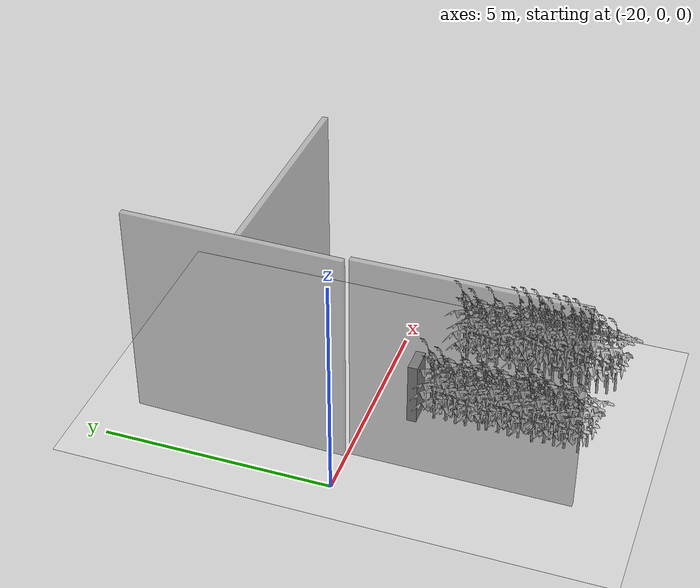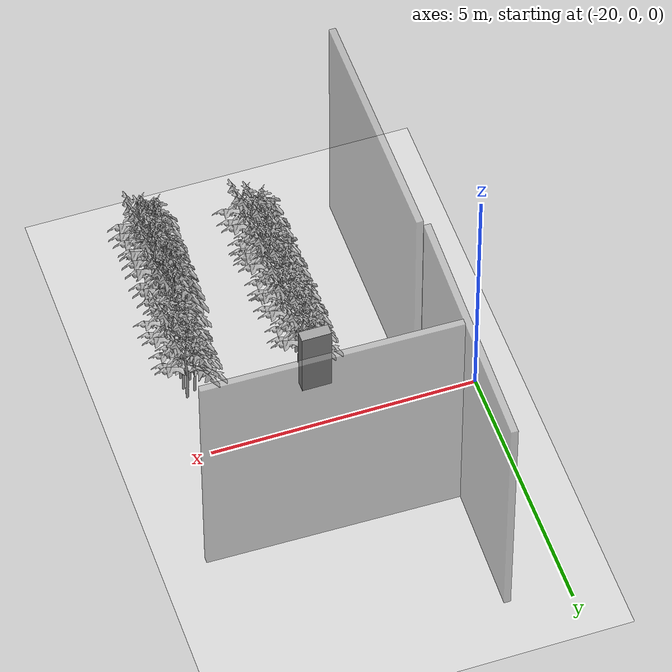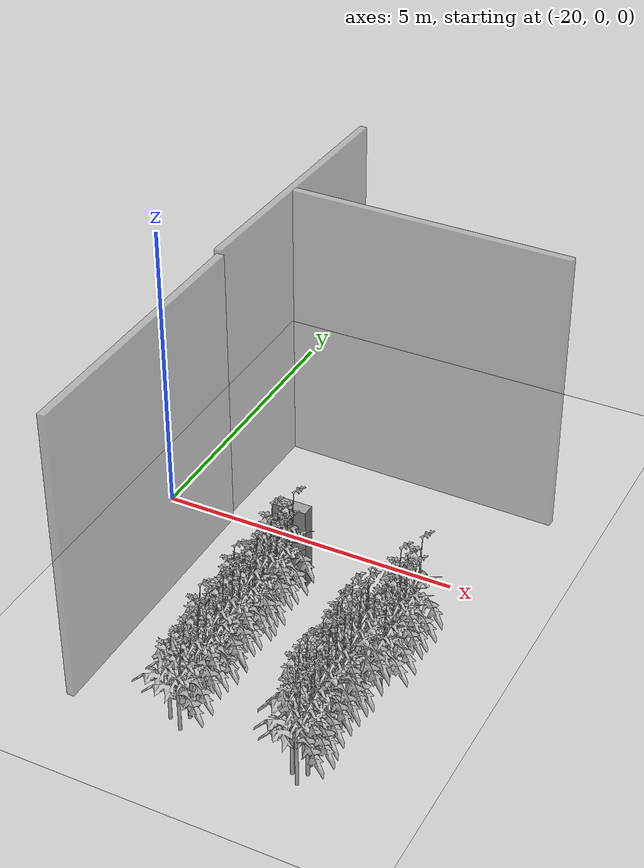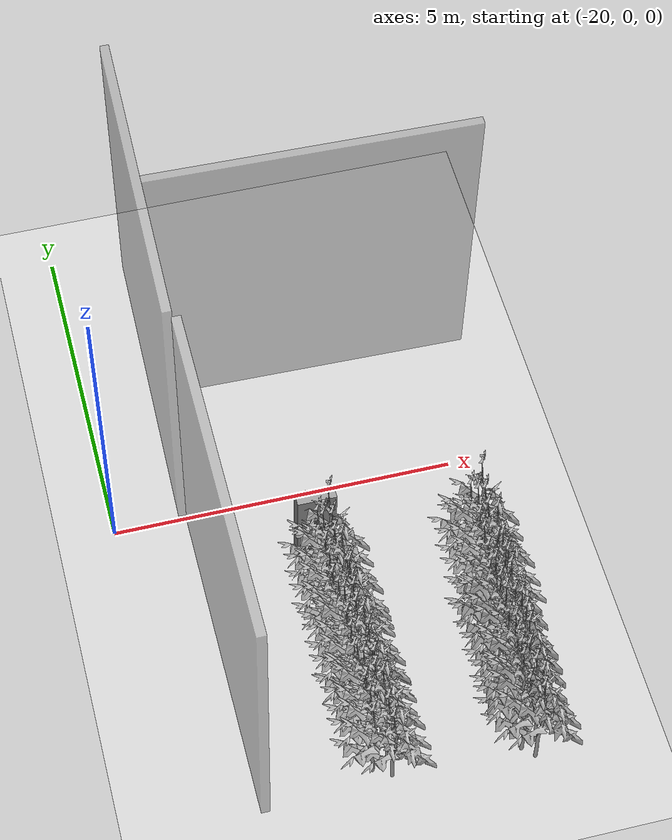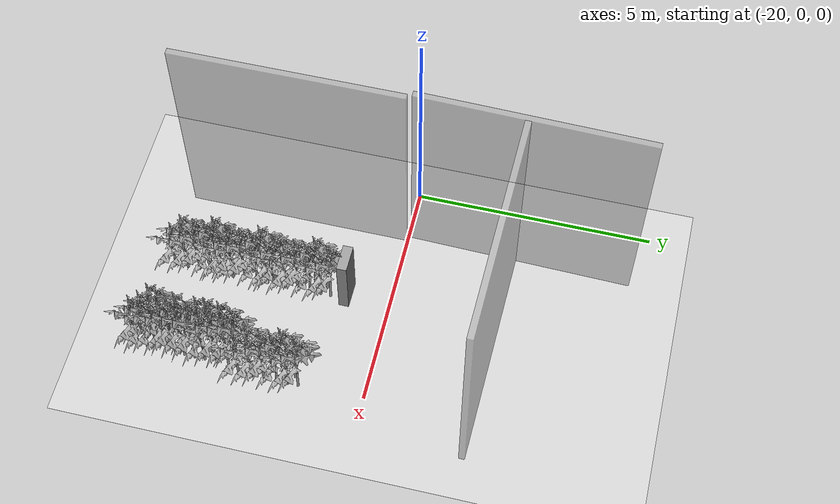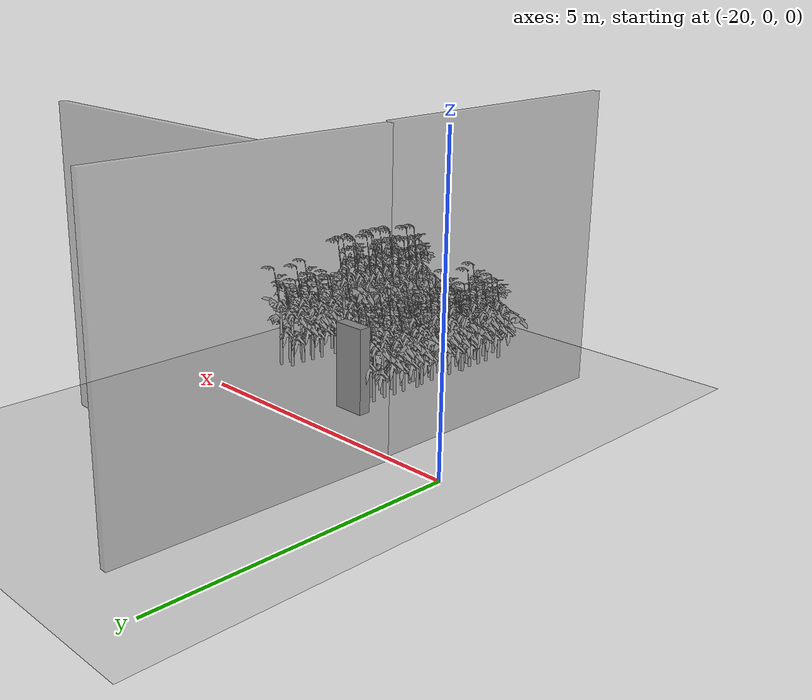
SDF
<sdf version="1.6">
 <world name="default">
  <model name="ground_plane">
   <static>1</static>
   <link name="link">
    <collision name="collision">
     <geometry><plane><normal>0 0 1</normal><size>100 100</size></plane></geometry>
     <surface>
      <contact><collide_bitmask>65535</collide_bitmask></contact>
      <friction><ode><mu>100</mu><mu2>50</mu2></ode></friction>
     </surface>
    </collision>
    <visual name="visual">
     <cast_shadows>0</cast_shadows>
     <geometry><plane><normal>0 0 1</normal><size>100 100</size></plane></geometry>
     <material>
      <script><uri>file://media/materials/scripts/gazebo.material</uri><name>Gazebo/Grey</name></script>
     </material>
    </visual>
   </link>
  </model>
  <model name="Front_Plant_1_8">
   <model name="tomato_plant_medium">
    <static>1</static>
    <link name="link">
     <collision name="collision">
      <pose>0 0 0 1.5708 -0 0</pose>
      <geometry><mesh><scale>0.5 0.5 0.5</scale><uri>model://stick/meshes/stick.dae</uri></mesh></geometry>
     </collision>
     <visual name="visual">
      <geometry>
       <mesh><scale>5e-06 5e-06 6e-06</scale><uri>model://tomato_plant_medium/meshes/tomato-plant.dae</uri></mesh>
      </geometry>
     </visual>
    </link>
    <pose>0.087453 -0.595994 0.012396 0 -0 0</pose>
   </model>
   <model name="tomato_plant_medium_0">
    <static>1</static>
    <link name="link">
     <collision name="collision">
      <pose>0 0 0 1.5708 -0 0</pose>
      <geometry><mesh><scale>0.5 0.5 0.5</scale><uri>model://stick/meshes/stick.dae</uri></mesh></geometry>
     </collision>
     <visual name="visual">
      <geometry>
       <mesh><scale>5e-06 5e-06 6e-06</scale><uri>model://tomato_plant_medium/meshes/tomato-plant.dae</uri></mesh>
      </geometry>
     </visual>
    </link>
    <pose>-0.086166 -0.251822 0.012396 0 -0 0</pose>
   </model>
   <model name="tomato_plant_medium_1">
    <static>1</static>
    <link name="link">
     <collision name="collision">
      <pose>0 0 0 1.5708 -0 0</pose>
      <geometry><mesh><scale>0.5 0.5 0.5</scale><uri>model://stick/meshes/stick.dae</uri></mesh></geometry>
     </collision>
     <visual name="visual">
      <geometry>
       <mesh><scale>5e-06 5e-06 6e-06</scale><uri>model://tomato_plant_medium/meshes/tomato-plant.dae</uri></mesh>
      </geometry>
     </visual>
    </link>
    <pose>0.080199 0.118127 0.012396 0 -0 0</pose>
   </model>
   <model name="tomato_plant_small">
    <static>1</static>
    <link name="link">
     <collision name="collision">
      <pose>0 0 0 1.5708 -0 0</pose>
      <geometry><mesh><scale>0.5 0.45 0.5</scale><uri>model://stick/meshes/stick.dae</uri></mesh></geometry>
     </collision>
     <visual name="visual">
      <geometry>
       <mesh><scale>5e-06 5e-06 5e-06</scale><uri>model://tomato_plant_small/meshes/tomato-plant.dae</uri></mesh>
      </geometry>
     </visual>
    </link>
    <pose>0.099683 -1.12011 0.012396 0 -0 0</pose>
   </model>
   <model name="tomato_plant_small_0">
    <static>1</static>
    <link name="link">
     <collision name="collision">
      <pose>0 0 0 1.5708 -0 0</pose>
      <geometry><mesh><scale>0.5 0.45 0.5</scale><uri>model://stick/meshes/stick.dae</uri></mesh></geometry>
     </collision>
     <visual name="visual">
      <geometry>
       <mesh><scale>5e-06 5e-06 5e-06</scale><uri>model://tomato_plant_small/meshes/tomato-plant.dae</uri></mesh>
      </geometry>
     </visual>
    </link>
    <pose>-0.138771 -0.983982 0.012396 0 -0 0</pose>
   </model>
   <model name="tomato_plant_small_1">
    <static>1</static>
    <link name="link">
     <collision name="collision">
      <pose>0 0 0 1.5708 -0 0</pose>
      <geometry><mesh><scale>0.5 0.45 0.5</scale><uri>model://stick/meshes/stick.dae</uri></mesh></geometry>
     </collision>
     <visual name="visual">
      <geometry>
       <mesh><scale>5e-06 5e-06 5e-06</scale><uri>model://tomato_plant_small/meshes/tomato-plant.dae</uri></mesh>
      </geometry>
     </visual>
    </link>
    <pose>0.101334 -0.848814 0.012396 0 -0 0</pose>
   </model>
   <model name="tomato_plant_small_2">
    <static>1</static>
    <link name="link">
     <collision name="collision">
      <pose>0 0 0 1.5708 -0 0</pose>
      <geometry><mesh><scale>0.5 0.45 0.5</scale><uri>model://stick/meshes/stick.dae</uri></mesh></geometry>
     </collision>
     <visual name="visual">
      <geometry>
       <mesh><scale>5e-06 5e-06 5e-06</scale><uri>model://tomato_plant_small/meshes/tomato-plant.dae</uri></mesh>
      </geometry>
     </visual>
    </link>
    <pose>-0.103369 -0.683189 0.012396 0 -0 0</pose>
   </model>
   <model name="tomato_plant_small_3">
    <static>1</static>
    <link name="link">
     <collision name="collision">
      <pose>0 0 0 1.5708 -0 0</pose>
      <geometry><mesh><scale>0.5 0.45 0.5</scale><uri>model://stick/meshes/stick.dae</uri></mesh></geometry>
     </collision>
     <visual name="visual">
      <geometry>
       <mesh><scale>5e-06 5e-06 5e-06</scale><uri>model://tomato_plant_small/meshes/tomato-plant.dae</uri></mesh>
      </geometry>
     </visual>
    </link>
    <pose>-0.104381 -0.464811 0.012396 0 -0 0</pose>
   </model>
   <model name="tomato_plant_small_4">
    <static>1</static>
    <link name="link">
     <collision name="collision">
      <pose>0 0 0 1.5708 -0 0</pose>
      <geometry><mesh><scale>0.5 0.45 0.5</scale><uri>model://stick/meshes/stick.dae</uri></mesh></geometry>
     </collision>
     <visual name="visual">
      <geometry>
       <mesh><scale>5e-06 5e-06 5e-06</scale><uri>model://tomato_plant_small/meshes/tomato-plant.dae</uri></mesh>
      </geometry>
     </visual>
    </link>
    <pose>0.055604 -0.336879 0.012396 0 -0 0</pose>
   </model>
   <model name="tomato_plant_small_5">
    <static>1</static>
    <link name="link">
     <collision name="collision">
      <pose>0 0 0 1.5708 -0 0</pose>
      <geometry><mesh><scale>0.5 0.45 0.5</scale><uri>model://stick/meshes/stick.dae</uri></mesh></geometry>
     </collision>
     <visual name="visual">
      <geometry>
       <mesh><scale>5e-06 5e-06 5e-06</scale><uri>model://tomato_plant_small/meshes/tomato-plant.dae</uri></mesh>
      </geometry>
     </visual>
    </link>
    <pose>0.085059 -0.092572 0.012396 0 -0 0</pose>
   </model>
   <model name="tomato_plant_small_6">
    <static>1</static>
    <link name="link">
     <collision name="collision">
      <pose>0 0 0 1.5708 -0 0</pose>
      <geometry><mesh><scale>0.5 0.45 0.5</scale><uri>model://stick/meshes/stick.dae</uri></mesh></geometry>
     </collision>
     <visual name="visual">
      <geometry>
       <mesh><scale>5e-06 5e-06 5e-06</scale><uri>model://tomato_plant_small/meshes/tomato-plant.dae</uri></mesh>
      </geometry>
     </visual>
    </link>
    <pose>-0.096345 0.008888 0.012396 0 -0 0</pose>
   </model>
   <static>0</static>
   <pose>-17.2096 -3.50699 0 0 -0 0</pose>
  </model>
  <model name="Front_Plant_1_9">
   <model name="tomato_plant_medium">
    <static>1</static>
    <link name="link">
     <collision name="collision">
      <pose>0 0 0 1.5708 -0 0</pose>
      <geometry><mesh><scale>0.5 0.5 0.5</scale><uri>model://stick/meshes/stick.dae</uri></mesh></geometry>
     </collision>
     <visual name="visual">
      <geometry>
       <mesh><scale>5e-06 5e-06 6e-06</scale><uri>model://tomato_plant_medium/meshes/tomato-plant.dae</uri></mesh>
      </geometry>
     </visual>
    </link>
    <pose>0.087453 -0.595994 0.012396 0 -0 0</pose>
   </model>
   <model name="tomato_plant_medium_0">
    <static>1</static>
    <link name="link">
     <collision name="collision">
      <pose>0 0 0 1.5708 -0 0</pose>
      <geometry><mesh><scale>0.5 0.5 0.5</scale><uri>model://stick/meshes/stick.dae</uri></mesh></geometry>
     </collision>
     <visual name="visual">
      <geometry>
       <mesh><scale>5e-06 5e-06 6e-06</scale><uri>model://tomato_plant_medium/meshes/tomato-plant.dae</uri></mesh>
      </geometry>
     </visual>
    </link>
    <pose>-0.086166 -0.251822 0.012396 0 -0 0</pose>
   </model>
   <model name="tomato_plant_medium_1">
    <static>1</static>
    <link name="link">
     <collision name="collision">
      <pose>0 0 0 1.5708 -0 0</pose>
      <geometry><mesh><scale>0.5 0.5 0.5</scale><uri>model://stick/meshes/stick.dae</uri></mesh></geometry>
     </collision>
     <visual name="visual">
      <geometry>
       <mesh><scale>5e-06 5e-06 6e-06</scale><uri>model://tomato_plant_medium/meshes/tomato-plant.dae</uri></mesh>
      </geometry>
     </visual>
    </link>
    <pose>0.080199 0.118127 0.012396 0 -0 0</pose>
   </model>
   <model name="tomato_plant_small">
    <static>1</static>
    <link name="link">
     <collision name="collision">
      <pose>0 0 0 1.5708 -0 0</pose>
      <geometry><mesh><scale>0.5 0.45 0.5</scale><uri>model://stick/meshes/stick.dae</uri></mesh></geometry>
     </collision>
     <visual name="visual">
      <geometry>
       <mesh><scale>5e-06 5e-06 5e-06</scale><uri>model://tomato_plant_small/meshes/tomato-plant.dae</uri></mesh>
      </geometry>
     </visual>
    </link>
    <pose>0.099683 -1.12011 0.012396 0 -0 0</pose>
   </model>
   <model name="tomato_plant_small_0">
    <static>1</static>
    <link name="link">
     <collision name="collision">
      <pose>0 0 0 1.5708 -0 0</pose>
      <geometry><mesh><scale>0.5 0.45 0.5</scale><uri>model://stick/meshes/stick.dae</uri></mesh></geometry>
     </collision>
     <visual name="visual">
      <geometry>
       <mesh><scale>5e-06 5e-06 5e-06</scale><uri>model://tomato_plant_small/meshes/tomato-plant.dae</uri></mesh>
      </geometry>
     </visual>
    </link>
    <pose>-0.138771 -0.983982 0.012396 0 -0 0</pose>
   </model>
   <model name="tomato_plant_small_1">
    <static>1</static>
    <link name="link">
     <collision name="collision">
      <pose>0 0 0 1.5708 -0 0</pose>
      <geometry><mesh><scale>0.5 0.45 0.5</scale><uri>model://stick/meshes/stick.dae</uri></mesh></geometry>
     </collision>
     <visual name="visual">
      <geometry>
       <mesh><scale>5e-06 5e-06 5e-06</scale><uri>model://tomato_plant_small/meshes/tomato-plant.dae</uri></mesh>
      </geometry>
     </visual>
    </link>
    <pose>0.101334 -0.848814 0.012396 0 -0 0</pose>
   </model>
   <model name="tomato_plant_small_2">
    <static>1</static>
    <link name="link">
     <collision name="collision">
      <pose>0 0 0 1.5708 -0 0</pose>
      <geometry><mesh><scale>0.5 0.45 0.5</scale><uri>model://stick/meshes/stick.dae</uri></mesh></geometry>
     </collision>
     <visual name="visual">
      <geometry>
       <mesh><scale>5e-06 5e-06 5e-06</scale><uri>model://tomato_plant_small/meshes/tomato-plant.dae</uri></mesh>
      </geometry>
     </visual>
    </link>
    <pose>-0.103369 -0.683189 0.012396 0 -0 0</pose>
   </model>
   <model name="tomato_plant_small_3">
    <static>1</static>
    <link name="link">
     <collision name="collision">
      <pose>0 0 0 1.5708 -0 0</pose>
      <geometry><mesh><scale>0.5 0.45 0.5</scale><uri>model://stick/meshes/stick.dae</uri></mesh></geometry>
     </collision>
     <visual name="visual">
      <geometry>
       <mesh><scale>5e-06 5e-06 5e-06</scale><uri>model://tomato_plant_small/meshes/tomato-plant.dae</uri></mesh>
      </geometry>
     </visual>
    </link>
    <pose>-0.104381 -0.464811 0.012396 0 -0 0</pose>
   </model>
   <model name="tomato_plant_small_4">
    <static>1</static>
    <link name="link">
     <collision name="collision">
      <pose>0 0 0 1.5708 -0 0</pose>
      <geometry><mesh><scale>0.5 0.45 0.5</scale><uri>model://stick/meshes/stick.dae</uri></mesh></geometry>
     </collision>
     <visual name="visual">
      <geometry>
       <mesh><scale>5e-06 5e-06 5e-06</scale><uri>model://tomato_plant_small/meshes/tomato-plant.dae</uri></mesh>
      </geometry>
     </visual>
    </link>
    <pose>0.055604 -0.336879 0.012396 0 -0 0</pose>
   </model>
   <model name="tomato_plant_small_5">
    <static>1</static>
    <link name="link">
     <collision name="collision">
      <pose>0 0 0 1.5708 -0 0</pose>
      <geometry><mesh><scale>0.5 0.45 0.5</scale><uri>model://stick/meshes/stick.dae</uri></mesh></geometry>
     </collision>
     <visual name="visual">
      <geometry>
       <mesh><scale>5e-06 5e-06 5e-06</scale><uri>model://tomato_plant_small/meshes/tomato-plant.dae</uri></mesh>
      </geometry>
     </visual>
    </link>
    <pose>0.085059 -0.092572 0.012396 0 -0 0</pose>
   </model>
   <model name="tomato_plant_small_6">
    <static>1</static>
    <link name="link">
     <collision name="collision">
      <pose>0 0 0 1.5708 -0 0</pose>
      <geometry><mesh><scale>0.5 0.45 0.5</scale><uri>model://stick/meshes/stick.dae</uri></mesh></geometry>
     </collision>
     <visual name="visual">
      <geometry>
       <mesh><scale>5e-06 5e-06 5e-06</scale><uri>model://tomato_plant_small/meshes/tomato-plant.dae</uri></mesh>
      </geometry>
     </visual>
    </link>
    <pose>-0.096345 0.008888 0.012396 0 -0 0</pose>
   </model>
   <static>0</static>
   <pose>-17.2096 -2.52385 0 0 -0 0</pose>
  </model>
  <model name="Front_Plant_1_10">
   <model name="tomato_plant_medium">
    <static>1</static>
    <link name="link">
     <collision name="collision">
      <pose>0 0 0 1.5708 -0 0</pose>
      <geometry><mesh><scale>0.5 0.5 0.5</scale><uri>model://stick/meshes/stick.dae</uri></mesh></geometry>
     </collision>
     <visual name="visual">
      <geometry>
       <mesh><scale>5e-06 5e-06 6e-06</scale><uri>model://tomato_plant_medium/meshes/tomato-plant.dae</uri></mesh>
      </geometry>
     </visual>
    </link>
    <pose>0.087453 -0.595994 0.012396 0 -0 0</pose>
   </model>
   <model name="tomato_plant_medium_0">
    <static>1</static>
    <link name="link">
     <collision name="collision">
      <pose>0 0 0 1.5708 -0 0</pose>
      <geometry><mesh><scale>0.5 0.5 0.5</scale><uri>model://stick/meshes/stick.dae</uri></mesh></geometry>
     </collision>
     <visual name="visual">
      <geometry>
       <mesh><scale>5e-06 5e-06 6e-06</scale><uri>model://tomato_plant_medium/meshes/tomato-plant.dae</uri></mesh>
      </geometry>
     </visual>
    </link>
    <pose>-0.086166 -0.251822 0.012396 0 -0 0</pose>
   </model>
   <model name="tomato_plant_medium_1">
    <static>1</static>
    <link name="link">
     <collision name="collision">
      <pose>0 0 0 1.5708 -0 0</pose>
      <geometry><mesh><scale>0.5 0.5 0.5</scale><uri>model://stick/meshes/stick.dae</uri></mesh></geometry>
     </collision>
     <visual name="visual">
      <geometry>
       <mesh><scale>5e-06 5e-06 6e-06</scale><uri>model://tomato_plant_medium/meshes/tomato-plant.dae</uri></mesh>
      </geometry>
     </visual>
    </link>
    <pose>0.080199 0.118127 0.012396 0 -0 0</pose>
   </model>
   <model name="tomato_plant_small">
    <static>1</static>
    <link name="link">
     <collision name="collision">
      <pose>0 0 0 1.5708 -0 0</pose>
      <geometry><mesh><scale>0.5 0.45 0.5</scale><uri>model://stick/meshes/stick.dae</uri></mesh></geometry>
     </collision>
     <visual name="visual">
      <geometry>
       <mesh><scale>5e-06 5e-06 5e-06</scale><uri>model://tomato_plant_small/meshes/tomato-plant.dae</uri></mesh>
      </geometry>
     </visual>
    </link>
    <pose>0.099683 -1.12011 0.012396 0 -0 0</pose>
   </model>
   <model name="tomato_plant_small_0">
    <static>1</static>
    <link name="link">
     <collision name="collision">
      <pose>0 0 0 1.5708 -0 0</pose>
      <geometry><mesh><scale>0.5 0.45 0.5</scale><uri>model://stick/meshes/stick.dae</uri></mesh></geometry>
     </collision>
     <visual name="visual">
      <geometry>
       <mesh><scale>5e-06 5e-06 5e-06</scale><uri>model://tomato_plant_small/meshes/tomato-plant.dae</uri></mesh>
      </geometry>
     </visual>
    </link>
    <pose>-0.138771 -0.983982 0.012396 0 -0 0</pose>
   </model>
   <model name="tomato_plant_small_1">
    <static>1</static>
    <link name="link">
     <collision name="collision">
      <pose>0 0 0 1.5708 -0 0</pose>
      <geometry><mesh><scale>0.5 0.45 0.5</scale><uri>model://stick/meshes/stick.dae</uri></mesh></geometry>
     </collision>
     <visual name="visual">
      <geometry>
       <mesh><scale>5e-06 5e-06 5e-06</scale><uri>model://tomato_plant_small/meshes/tomato-plant.dae</uri></mesh>
      </geometry>
     </visual>
    </link>
    <pose>0.101334 -0.848814 0.012396 0 -0 0</pose>
   </model>
   <model name="tomato_plant_small_2">
    <static>1</static>
    <link name="link">
     <collision name="collision">
      <pose>0 0 0 1.5708 -0 0</pose>
      <geometry><mesh><scale>0.5 0.45 0.5</scale><uri>model://stick/meshes/stick.dae</uri></mesh></geometry>
     </collision>
     <visual name="visual">
      <geometry>
       <mesh><scale>5e-06 5e-06 5e-06</scale><uri>model://tomato_plant_small/meshes/tomato-plant.dae</uri></mesh>
      </geometry>
     </visual>
    </link>
    <pose>-0.103369 -0.683189 0.012396 0 -0 0</pose>
   </model>
   <model name="tomato_plant_small_3">
    <static>1</static>
    <link name="link">
     <collision name="collision">
      <pose>0 0 0 1.5708 -0 0</pose>
      <geometry><mesh><scale>0.5 0.45 0.5</scale><uri>model://stick/meshes/stick.dae</uri></mesh></geometry>
     </collision>
     <visual name="visual">
      <geometry>
       <mesh><scale>5e-06 5e-06 5e-06</scale><uri>model://tomato_plant_small/meshes/tomato-plant.dae</uri></mesh>
      </geometry>
     </visual>
    </link>
    <pose>-0.104381 -0.464811 0.012396 0 -0 0</pose>
   </model>
   <model name="tomato_plant_small_4">
    <static>1</static>
    <link name="link">
     <collision name="collision">
      <pose>0 0 0 1.5708 -0 0</pose>
      <geometry><mesh><scale>0.5 0.45 0.5</scale><uri>model://stick/meshes/stick.dae</uri></mesh></geometry>
     </collision>
     <visual name="visual">
      <geometry>
       <mesh><scale>5e-06 5e-06 5e-06</scale><uri>model://tomato_plant_small/meshes/tomato-plant.dae</uri></mesh>
      </geometry>
     </visual>
    </link>
    <pose>0.055604 -0.336879 0.012396 0 -0 0</pose>
   </model>
   <model name="tomato_plant_small_5">
    <static>1</static>
    <link name="link">
     <collision name="collision">
      <pose>0 0 0 1.5708 -0 0</pose>
      <geometry><mesh><scale>0.5 0.45 0.5</scale><uri>model://stick/meshes/stick.dae</uri></mesh></geometry>
     </collision>
     <visual name="visual">
      <geometry>
       <mesh><scale>5e-06 5e-06 5e-06</scale><uri>model://tomato_plant_small/meshes/tomato-plant.dae</uri></mesh>
      </geometry>
     </visual>
    </link>
    <pose>0.085059 -0.092572 0.012396 0 -0 0</pose>
   </model>
   <model name="tomato_plant_small_6">
    <static>1</static>
    <link name="link">
     <collision name="collision">
      <pose>0 0 0 1.5708 -0 0</pose>
      <geometry><mesh><scale>0.5 0.45 0.5</scale><uri>model://stick/meshes/stick.dae</uri></mesh></geometry>
     </collision>
     <visual name="visual">
      <geometry>
       <mesh><scale>5e-06 5e-06 5e-06</scale><uri>model://tomato_plant_small/meshes/tomato-plant.dae</uri></mesh>
      </geometry>
     </visual>
    </link>
    <pose>-0.096345 0.008888 0.012396 0 -0 0</pose>
   </model>
   <static>0</static>
   <pose>-17.2096 -1.37891 0 0 -0 0</pose>
  </model>
  <model name="MIddle_Plant_1_1">
   <model name="tomato_plant_big">
    <static>1</static>
    <link name="link">
     <collision name="collision">
      <pose>0 0 0 1.5708 -0 0</pose>
      <geometry><mesh><scale>0.5 0.6 0.5</scale><uri>model://stick/meshes/stick.dae</uri></mesh></geometry>
     </collision>
     <visual name="visual">
      <geometry>
       <mesh><scale>5e-06 5e-06 7e-06</scale><uri>model://tomato_plant_big/meshes/tomato-plant.dae</uri></mesh>
      </geometry>
     </visual>
    </link>
    <pose>-0.144318 -0.693607 -0 0 -0 0</pose>
   </model>
   <model name="tomato_plant_big_0">
    <static>1</static>
    <link name="link">
     <collision name="collision">
      <pose>0 0 0 1.5708 -0 0</pose>
      <geometry><mesh><scale>0.5 0.6 0.5</scale><uri>model://stick/meshes/stick.dae</uri></mesh></geometry>
     </collision>
     <visual name="visual">
      <geometry>
       <mesh><scale>5e-06 5e-06 7e-06</scale><uri>model://tomato_plant_big/meshes/tomato-plant.dae</uri></mesh>
      </geometry>
     </visual>
    </link>
    <pose>-0.11784 -0.519827 0 0 -0 0</pose>
   </model>
   <model name="tomato_plant_big_1">
    <static>1</static>
    <link name="link">
     <collision name="collision">
      <pose>0 0 0 1.5708 -0 0</pose>
      <geometry><mesh><scale>0.5 0.6 0.5</scale><uri>model://stick/meshes/stick.dae</uri></mesh></geometry>
     </collision>
     <visual name="visual">
      <geometry>
       <mesh><scale>5e-06 5e-06 7e-06</scale><uri>model://tomato_plant_big/meshes/tomato-plant.dae</uri></mesh>
      </geometry>
     </visual>
    </link>
    <pose>0.073755 -0.247584 0 0 -0 0</pose>
   </model>
   <model name="tomato_plant_big_10">
    <static>1</static>
    <link name="link">
     <collision name="collision">
      <pose>0 0 0 1.5708 -0 0</pose>
      <geometry><mesh><scale>0.5 0.6 0.5</scale><uri>model://stick/meshes/stick.dae</uri></mesh></geometry>
     </collision>
     <visual name="visual">
      <geometry>
       <mesh><scale>5e-06 5e-06 7e-06</scale><uri>model://tomato_plant_big/meshes/tomato-plant.dae</uri></mesh>
      </geometry>
     </visual>
    </link>
    <pose>0.037052 1.07094 0 0 -0 0</pose>
   </model>
   <model name="tomato_plant_big_2">
    <static>1</static>
    <link name="link">
     <collision name="collision">
      <pose>0 0 0 1.5708 -0 0</pose>
      <geometry><mesh><scale>0.5 0.6 0.5</scale><uri>model://stick/meshes/stick.dae</uri></mesh></geometry>
     </collision>
     <visual name="visual">
      <geometry>
       <mesh><scale>5e-06 5e-06 7e-06</scale><uri>model://tomato_plant_big/meshes/tomato-plant.dae</uri></mesh>
      </geometry>
     </visual>
    </link>
    <pose>-0.076926 -0.131165 0 0 -0 0</pose>
   </model>
   <model name="tomato_plant_big_3">
    <static>1</static>
    <link name="link">
     <collision name="collision">
      <pose>0 0 0 1.5708 -0 0</pose>
      <geometry><mesh><scale>0.5 0.6 0.5</scale><uri>model://stick/meshes/stick.dae</uri></mesh></geometry>
     </collision>
     <visual name="visual">
      <geometry>
       <mesh><scale>5e-06 5e-06 7e-06</scale><uri>model://tomato_plant_big/meshes/tomato-plant.dae</uri></mesh>
      </geometry>
     </visual>
    </link>
    <pose>0.093714 -0.038386 0 0 -0 0</pose>
   </model>
   <model name="tomato_plant_big_4">
    <static>1</static>
    <link name="link">
     <collision name="collision">
      <pose>0 0 0 1.5708 -0 0</pose>
      <geometry><mesh><scale>0.5 0.6 0.5</scale><uri>model://stick/meshes/stick.dae</uri></mesh></geometry>
     </collision>
     <visual name="visual">
      <geometry>
       <mesh><scale>5e-06 5e-06 7e-06</scale><uri>model://tomato_plant_big/meshes/tomato-plant.dae</uri></mesh>
      </geometry>
     </visual>
    </link>
    <pose>0.103117 0.184356 0 0 -0 0</pose>
   </model>
   <model name="tomato_plant_big_5">
    <static>1</static>
    <link name="link">
     <collision name="collision">
      <pose>0 0 0 1.5708 -0 0</pose>
      <geometry><mesh><scale>0.5 0.6 0.5</scale><uri>model://stick/meshes/stick.dae</uri></mesh></geometry>
     </collision>
     <visual name="visual">
      <geometry>
       <mesh><scale>5e-06 5e-06 7e-06</scale><uri>model://tomato_plant_big/meshes/tomato-plant.dae</uri></mesh>
      </geometry>
     </visual>
    </link>
    <pose>-0.074883 0.301479 0 0 -0 0</pose>
   </model>
   <model name="tomato_plant_big_6">
    <static>1</static>
    <link name="link">
     <collision name="collision">
      <pose>0 0 0 1.5708 -0 0</pose>
      <geometry><mesh><scale>0.5 0.6 0.5</scale><uri>model://stick/meshes/stick.dae</uri></mesh></geometry>
     </collision>
     <visual name="visual">
      <geometry>
       <mesh><scale>5e-06 5e-06 7e-06</scale><uri>model://tomato_plant_big/meshes/tomato-plant.dae</uri></mesh>
      </geometry>
     </visual>
    </link>
    <pose>-0.096921 0.484007 0 0 -0 0</pose>
   </model>
   <model name="tomato_plant_big_7">
    <static>1</static>
    <link name="link">
     <collision name="collision">
      <pose>0 0 0 1.5708 -0 0</pose>
      <geometry><mesh><scale>0.5 0.6 0.5</scale><uri>model://stick/meshes/stick.dae</uri></mesh></geometry>
     </collision>
     <visual name="visual">
      <geometry>
       <mesh><scale>5e-06 5e-06 7e-06</scale><uri>model://tomato_plant_big/meshes/tomato-plant.dae</uri></mesh>
      </geometry>
     </visual>
    </link>
    <pose>0.107491 0.653976 0 0 -0 0</pose>
   </model>
   <model name="tomato_plant_big_8">
    <static>1</static>
    <link name="link">
     <collision name="collision">
      <pose>0 0 0 1.5708 -0 0</pose>
      <geometry><mesh><scale>0.5 0.6 0.5</scale><uri>model://stick/meshes/stick.dae</uri></mesh></geometry>
     </collision>
     <visual name="visual">
      <geometry>
       <mesh><scale>5e-06 5e-06 7e-06</scale><uri>model://tomato_plant_big/meshes/tomato-plant.dae</uri></mesh>
      </geometry>
     </visual>
    </link>
    <pose>-0.07985 0.768549 0 0 -0 0</pose>
   </model>
   <model name="tomato_plant_big_9">
    <static>1</static>
    <link name="link">
     <collision name="collision">
      <pose>0 0 0 1.5708 -0 0</pose>
      <geometry><mesh><scale>0.5 0.6 0.5</scale><uri>model://stick/meshes/stick.dae</uri></mesh></geometry>
     </collision>
     <visual name="visual">
      <geometry>
       <mesh><scale>5e-06 5e-06 7e-06</scale><uri>model://tomato_plant_big/meshes/tomato-plant.dae</uri></mesh>
      </geometry>
     </visual>
    </link>
    <pose>0.098361 0.890852 0 0 -0 0</pose>
   </model>
   <model name="tomato_plant_medium">
    <static>1</static>
    <link name="link">
     <collision name="collision">
      <pose>0 0 0 1.5708 -0 0</pose>
      <geometry><mesh><scale>0.5 0.5 0.5</scale><uri>model://stick/meshes/stick.dae</uri></mesh></geometry>
     </collision>
     <visual name="visual">
      <geometry>
       <mesh><scale>5e-06 5e-06 6e-06</scale><uri>model://tomato_plant_medium/meshes/tomato-plant.dae</uri></mesh>
      </geometry>
     </visual>
    </link>
    <pose>0.056913 -1.05328 0 0 -0 0</pose>
   </model>
   <model name="tomato_plant_medium_0">
    <static>1</static>
    <link name="link">
     <collision name="collision">
      <pose>0 0 0 1.5708 -0 0</pose>
      <geometry><mesh><scale>0.5 0.5 0.5</scale><uri>model://stick/meshes/stick.dae</uri></mesh></geometry>
     </collision>
     <visual name="visual">
      <geometry>
       <mesh><scale>5e-06 5e-06 6e-06</scale><uri>model://tomato_plant_medium/meshes/tomato-plant.dae</uri></mesh>
      </geometry>
     </visual>
    </link>
    <pose>-0.092719 -0.905729 0 0 -0 0</pose>
   </model>
   <model name="tomato_plant_medium_1">
    <static>1</static>
    <link name="link">
     <collision name="collision">
      <pose>0 0 0 1.5708 -0 0</pose>
      <geometry><mesh><scale>0.5 0.5 0.5</scale><uri>model://stick/meshes/stick.dae</uri></mesh></geometry>
     </collision>
     <visual name="visual">
      <geometry>
       <mesh><scale>5e-06 5e-06 6e-06</scale><uri>model://tomato_plant_medium/meshes/tomato-plant.dae</uri></mesh>
      </geometry>
     </visual>
    </link>
    <pose>0.108962 -0.829637 0 0 -0 0</pose>
   </model>
   <model name="tomato_plant_medium_2">
    <static>1</static>
    <link name="link">
     <collision name="collision">
      <pose>0 0 0 1.5708 -0 0</pose>
      <geometry><mesh><scale>0.5 0.5 0.5</scale><uri>model://stick/meshes/stick.dae</uri></mesh></geometry>
     </collision>
     <visual name="visual">
      <geometry>
       <mesh><scale>5e-06 5e-06 6e-06</scale><uri>model://tomato_plant_medium/meshes/tomato-plant.dae</uri></mesh>
      </geometry>
     </visual>
    </link>
    <pose>0.071216 -0.652507 0 0 -0 0</pose>
   </model>
   <model name="tomato_plant_medium_3">
    <static>1</static>
    <link name="link">
     <collision name="collision">
      <pose>0 0 0 1.5708 -0 0</pose>
      <geometry><mesh><scale>0.5 0.5 0.5</scale><uri>model://stick/meshes/stick.dae</uri></mesh></geometry>
     </collision>
     <visual name="visual">
      <geometry>
       <mesh><scale>5e-06 5e-06 6e-06</scale><uri>model://tomato_plant_medium/meshes/tomato-plant.dae</uri></mesh>
      </geometry>
     </visual>
    </link>
    <pose>0.047335 -0.423046 0 0 -0 0</pose>
   </model>
   <model name="tomato_plant_medium_4">
    <static>1</static>
    <link name="link">
     <collision name="collision">
      <pose>0 0 0 1.5708 -0 0</pose>
      <geometry><mesh><scale>0.5 0.5 0.5</scale><uri>model://stick/meshes/stick.dae</uri></mesh></geometry>
     </collision>
     <visual name="visual">
      <geometry>
       <mesh><scale>5e-06 5e-06 6e-06</scale><uri>model://tomato_plant_medium/meshes/tomato-plant.dae</uri></mesh>
      </geometry>
     </visual>
    </link>
    <pose>-0.081012 -0.320324 0 0 -0 0</pose>
   </model>
   <model name="tomato_plant_medium_5">
    <static>1</static>
    <link name="link">
     <collision name="collision">
      <pose>0 0 0 1.5708 -0 0</pose>
      <geometry><mesh><scale>0.5 0.5 0.5</scale><uri>model://stick/meshes/stick.dae</uri></mesh></geometry>
     </collision>
     <visual name="visual">
      <geometry>
       <mesh><scale>5e-06 5e-06 6e-06</scale><uri>model://tomato_plant_medium/meshes/tomato-plant.dae</uri></mesh>
      </geometry>
     </visual>
    </link>
    <pose>-0.07452 0.095988 0 0 -0 0</pose>
   </model>
   <model name="tomato_plant_medium_6">
    <static>1</static>
    <link name="link">
     <collision name="collision">
      <pose>0 0 0 1.5708 -0 0</pose>
      <geometry><mesh><scale>0.5 0.5 0.5</scale><uri>model://stick/meshes/stick.dae</uri></mesh></geometry>
     </collision>
     <visual name="visual">
      <geometry>
       <mesh><scale>5e-06 5e-06 6e-06</scale><uri>model://tomato_plant_medium/meshes/tomato-plant.dae</uri></mesh>
      </geometry>
     </visual>
    </link>
    <pose>0.101424 0.395443 0 0 -0 0</pose>
   </model>
   <model name="tomato_plant_small">
    <static>1</static>
    <link name="link">
     <collision name="collision">
      <pose>0 0 0 1.5708 -0 0</pose>
      <geometry><mesh><scale>0.5 0.45 0.5</scale><uri>model://stick/meshes/stick.dae</uri></mesh></geometry>
     </collision>
     <visual name="visual">
      <geometry>
       <mesh><scale>5e-06 5e-06 5e-06</scale><uri>model://tomato_plant_small/meshes/tomato-plant.dae</uri></mesh>
      </geometry>
     </visual>
    </link>
    <pose>-0.060351 0.969512 0 0 -0 0</pose>
   </model>
   <static>0</static>
   <pose>-15.2111 -3.7519 0 0 -0 0</pose>
  </model>
  <model name="Front_Plant_1_13">
   <model name="tomato_plant_medium">
    <static>1</static>
    <link name="link">
     <collision name="collision">
      <pose>0 0 0 1.5708 -0 0</pose>
      <geometry><mesh><scale>0.5 0.5 0.5</scale><uri>model://stick/meshes/stick.dae</uri></mesh></geometry>
     </collision>
     <visual name="visual">
      <geometry>
       <mesh><scale>5e-06 5e-06 6e-06</scale><uri>model://tomato_plant_medium/meshes/tomato-plant.dae</uri></mesh>
      </geometry>
     </visual>
    </link>
    <pose>0.087453 -0.595994 0.012396 0 -0 0</pose>
   </model>
   <model name="tomato_plant_medium_0">
    <static>1</static>
    <link name="link">
     <collision name="collision">
      <pose>0 0 0 1.5708 -0 0</pose>
      <geometry><mesh><scale>0.5 0.5 0.5</scale><uri>model://stick/meshes/stick.dae</uri></mesh></geometry>
     </collision>
     <visual name="visual">
      <geometry>
       <mesh><scale>5e-06 5e-06 6e-06</scale><uri>model://tomato_plant_medium/meshes/tomato-plant.dae</uri></mesh>
      </geometry>
     </visual>
    </link>
    <pose>-0.086166 -0.251822 0.012396 0 -0 0</pose>
   </model>
   <model name="tomato_plant_medium_1">
    <static>1</static>
    <link name="link">
     <collision name="collision">
      <pose>0 0 0 1.5708 -0 0</pose>
      <geometry><mesh><scale>0.5 0.5 0.5</scale><uri>model://stick/meshes/stick.dae</uri></mesh></geometry>
     </collision>
     <visual name="visual">
      <geometry>
       <mesh><scale>5e-06 5e-06 6e-06</scale><uri>model://tomato_plant_medium/meshes/tomato-plant.dae</uri></mesh>
      </geometry>
     </visual>
    </link>
    <pose>0.080199 0.118127 0.012396 0 -0 0</pose>
   </model>
   <model name="tomato_plant_small">
    <static>1</static>
    <link name="link">
     <collision name="collision">
      <pose>0 0 0 1.5708 -0 0</pose>
      <geometry><mesh><scale>0.5 0.45 0.5</scale><uri>model://stick/meshes/stick.dae</uri></mesh></geometry>
     </collision>
     <visual name="visual">
      <geometry>
       <mesh><scale>5e-06 5e-06 5e-06</scale><uri>model://tomato_plant_small/meshes/tomato-plant.dae</uri></mesh>
      </geometry>
     </visual>
    </link>
    <pose>0.099683 -1.12011 0.012396 0 -0 0</pose>
   </model>
   <model name="tomato_plant_small_0">
    <static>1</static>
    <link name="link">
     <collision name="collision">
      <pose>0 0 0 1.5708 -0 0</pose>
      <geometry><mesh><scale>0.5 0.45 0.5</scale><uri>model://stick/meshes/stick.dae</uri></mesh></geometry>
     </collision>
     <visual name="visual">
      <geometry>
       <mesh><scale>5e-06 5e-06 5e-06</scale><uri>model://tomato_plant_small/meshes/tomato-plant.dae</uri></mesh>
      </geometry>
     </visual>
    </link>
    <pose>-0.138771 -0.983982 0.012396 0 -0 0</pose>
   </model>
   <model name="tomato_plant_small_1">
    <static>1</static>
    <link name="link">
     <collision name="collision">
      <pose>0 0 0 1.5708 -0 0</pose>
      <geometry><mesh><scale>0.5 0.45 0.5</scale><uri>model://stick/meshes/stick.dae</uri></mesh></geometry>
     </collision>
     <visual name="visual">
      <geometry>
       <mesh><scale>5e-06 5e-06 5e-06</scale><uri>model://tomato_plant_small/meshes/tomato-plant.dae</uri></mesh>
      </geometry>
     </visual>
    </link>
    <pose>0.101334 -0.848814 0.012396 0 -0 0</pose>
   </model>
   <model name="tomato_plant_small_2">
    <static>1</static>
    <link name="link">
     <collision name="collision">
      <pose>0 0 0 1.5708 -0 0</pose>
      <geometry><mesh><scale>0.5 0.45 0.5</scale><uri>model://stick/meshes/stick.dae</uri></mesh></geometry>
     </collision>
     <visual name="visual">
      <geometry>
       <mesh><scale>5e-06 5e-06 5e-06</scale><uri>model://tomato_plant_small/meshes/tomato-plant.dae</uri></mesh>
      </geometry>
     </visual>
    </link>
    <pose>-0.103369 -0.683189 0.012396 0 -0 0</pose>
   </model>
   <model name="tomato_plant_small_3">
    <static>1</static>
    <link name="link">
     <collision name="collision">
      <pose>0 0 0 1.5708 -0 0</pose>
      <geometry><mesh><scale>0.5 0.45 0.5</scale><uri>model://stick/meshes/stick.dae</uri></mesh></geometry>
     </collision>
     <visual name="visual">
      <geometry>
       <mesh><scale>5e-06 5e-06 5e-06</scale><uri>model://tomato_plant_small/meshes/tomato-plant.dae</uri></mesh>
      </geometry>
     </visual>
    </link>
    <pose>-0.104381 -0.464811 0.012396 0 -0 0</pose>
   </model>
   <model name="tomato_plant_small_4">
    <static>1</static>
    <link name="link">
     <collision name="collision">
      <pose>0 0 0 1.5708 -0 0</pose>
      <geometry><mesh><scale>0.5 0.45 0.5</scale><uri>model://stick/meshes/stick.dae</uri></mesh></geometry>
     </collision>
     <visual name="visual">
      <geometry>
       <mesh><scale>5e-06 5e-06 5e-06</scale><uri>model://tomato_plant_small/meshes/tomato-plant.dae</uri></mesh>
      </geometry>
     </visual>
    </link>
    <pose>0.055604 -0.336879 0.012396 0 -0 0</pose>
   </model>
   <model name="tomato_plant_small_5">
    <static>1</static>
    <link name="link">
     <collision name="collision">
      <pose>0 0 0 1.5708 -0 0</pose>
      <geometry><mesh><scale>0.5 0.45 0.5</scale><uri>model://stick/meshes/stick.dae</uri></mesh></geometry>
     </collision>
     <visual name="visual">
      <geometry>
       <mesh><scale>5e-06 5e-06 5e-06</scale><uri>model://tomato_plant_small/meshes/tomato-plant.dae</uri></mesh>
      </geometry>
     </visual>
    </link>
    <pose>0.085059 -0.092572 0.012396 0 -0 0</pose>
   </model>
   <model name="tomato_plant_small_6">
    <static>1</static>
    <link name="link">
     <collision name="collision">
      <pose>0 0 0 1.5708 -0 0</pose>
      <geometry><mesh><scale>0.5 0.45 0.5</scale><uri>model://stick/meshes/stick.dae</uri></mesh></geometry>
     </collision>
     <visual name="visual">
      <geometry>
       <mesh><scale>5e-06 5e-06 5e-06</scale><uri>model://tomato_plant_small/meshes/tomato-plant.dae</uri></mesh>
      </geometry>
     </visual>
    </link>
    <pose>-0.096345 0.008888 0.012396 0 -0 0</pose>
   </model>
   <static>0</static>
   <pose>-15.0492 -1.47847 0 0 -0 0</pose>
  </model>
  <model name="wall_0_clone_0">
   <link name="link">
    <inertial>
     <mass>2.87883</mass>
     <inertia><ixx>11.0771</ixx><ixy>0</ixy><ixz>0</ixz><iyy>5.80298</iyy><iyz>0</iyz><izz>5.28163</izz></inertia>
    </inertial>
    <pose>0 -0.040293 1.94803 0 -0 0</pose>
    <visual name="visual">
     <geometry><box><size>0.12484 4.69043 4.91663</size></box></geometry>
     <material>
      <script><name>Gazebo/Grey</name><uri>file://media/materials/scripts/gazebo.material</uri></script>
      <ambient>0.3 0.3 0.3 1</ambient>
      <diffuse>0.7 0.7 0.7 1</diffuse>
      <specular>0.01 0.01 0.01 1</specular>
      <emissive>0 0 0 1</emissive>
      <shader type="vertex"><normal_map>__default__</normal_map></shader>
     </material>
     <transparency>0.5</transparency>
    </visual>
    <collision name="collision">
     <geometry><box><size>0.12484 4.69043 4.91663</size></box></geometry>
     <surface>
      <friction>
       <ode><mu>1</mu><mu2>1</mu2><fdir1>0 0 0</fdir1><slip1>0</slip1><slip2>0</slip2></ode>
       <torsional>
        <coefficient>1</coefficient>
        <patch_radius>0</patch_radius>
        <surface_radius>0</surface_radius>
        <use_patch_radius>1</use_patch_radius>
        <ode><slip>0</slip></ode>
       </torsional>
      </friction>
      <bounce><restitution_coefficient>0</restitution_coefficient><threshold>1e+06</threshold></bounce>
      <contact>
       <collide_without_contact>0</collide_without_contact>
       <collide_without_contact_bitmask>1</collide_without_contact_bitmask>
       <collide_bitmask>1</collide_bitmask>
       <ode>
        <soft_cfm>0</soft_cfm>
        <soft_erp>0.2</soft_erp>
        <kp>1e+13</kp>
        <kd>1</kd>
        <max_vel>0.01</max_vel>
        <min_depth>0</min_depth>
       </ode>
       <bullet>
        <split_impulse>1</split_impulse>
        <split_impulse_penetration_threshold>-0.01</split_impulse_penetration_threshold>
        <soft_cfm>0</soft_cfm>
        <soft_erp>0.2</soft_erp>
        <kp>1e+13</kp>
        <kd>1</kd>
       </bullet>
      </contact>
     </surface>
    </collision>
   </link>
   <static>0</static>
   <pose>-18.8902 -2.33614 0.520285 0 0 -0.00101</pose>
  </model>
  <model name="wall_0_clone_0_clone">
   <link name="link">
    <inertial>
     <mass>2.87883</mass>
     <inertia><ixx>11.0771</ixx><ixy>0</ixy><ixz>0</ixz><iyy>5.80298</iyy><iyz>0</iyz><izz>5.28163</izz></inertia>
    </inertial>
    <pose>0 -0.040293 1.94803 0 -0 0</pose>
    <visual name="visual">
     <geometry><box><size>0.12484 4.69043 4.91663</size></box></geometry>
     <material>
      <script><name>Gazebo/Grey</name><uri>file://media/materials/scripts/gazebo.material</uri></script>
      <ambient>0.3 0.3 0.3 1</ambient>
      <diffuse>0.7 0.7 0.7 1</diffuse>
      <specular>0.01 0.01 0.01 1</specular>
      <emissive>0 0 0 1</emissive>
      <shader type="vertex"><normal_map>__default__</normal_map></shader>
     </material>
     <transparency>0.5</transparency>
    </visual>
    <collision name="collision">
     <geometry><box><size>0.12484 4.69043 4.91663</size></box></geometry>
     <surface>
      <friction>
       <ode><mu>1</mu><mu2>1</mu2><fdir1>0 0 0</fdir1><slip1>0</slip1><slip2>0</slip2></ode>
       <torsional>
        <coefficient>1</coefficient>
        <patch_radius>0</patch_radius>
        <surface_radius>0</surface_radius>
        <use_patch_radius>1</use_patch_radius>
        <ode><slip>0</slip></ode>
       </torsional>
      </friction>
      <bounce><restitution_coefficient>0</restitution_coefficient><threshold>1e+06</threshold></bounce>
      <contact>
       <collide_without_contact>0</collide_without_contact>
       <collide_without_contact_bitmask>1</collide_without_contact_bitmask>
       <collide_bitmask>1</collide_bitmask>
       <ode>
        <soft_cfm>0</soft_cfm>
        <soft_erp>0.2</soft_erp>
        <kp>1e+13</kp>
        <kd>1</kd>
        <max_vel>0.01</max_vel>
        <min_depth>0</min_depth>
       </ode>
       <bullet>
        <split_impulse>1</split_impulse>
        <split_impulse_penetration_threshold>-0.01</split_impulse_penetration_threshold>
        <soft_cfm>0</soft_cfm>
        <soft_erp>0.2</soft_erp>
        <kp>1e+13</kp>
        <kd>1</kd>
       </bullet>
      </contact>
     </surface>
    </collision>
   </link>
   <static>0</static>
   <pose>-16.4861 2.22912 0.520285 -0 1e-06 -1.58844</pose>
  </model>
  <model name="wall_0_clone_0_clone_0">
   <link name="link">
    <inertial>
     <mass>2.87883</mass>
     <inertia><ixx>11.0771</ixx><ixy>0</ixy><ixz>0</ixz><iyy>5.80298</iyy><iyz>0</iyz><izz>5.28163</izz></inertia>
    </inertial>
    <pose>0 -0.040293 1.94803 0 -0 0</pose>
    <visual name="visual">
     <geometry><box><size>0.12484 4.69043 4.91663</size></box></geometry>
     <material>
      <script><name>Gazebo/Grey</name><uri>file://media/materials/scripts/gazebo.material</uri></script>
      <ambient>0.3 0.3 0.3 1</ambient>
      <diffuse>0.7 0.7 0.7 1</diffuse>
      <specular>0.01 0.01 0.01 1</specular>
      <emissive>0 0 0 1</emissive>
      <shader type="vertex"><normal_map>__default__</normal_map></shader>
     </material>
     <transparency>0.5</transparency>
    </visual>
    <collision name="collision">
     <geometry><box><size>0.12484 4.69043 4.91663</size></box></geometry>
     <surface>
      <friction>
       <ode><mu>1</mu><mu2>1</mu2><fdir1>0 0 0</fdir1><slip1>0</slip1><slip2>0</slip2></ode>
       <torsional>
        <coefficient>1</coefficient>
        <patch_radius>0</patch_radius>
        <surface_radius>0</surface_radius>
        <use_patch_radius>1</use_patch_radius>
        <ode><slip>0</slip></ode>
       </torsional>
      </friction>
      <bounce><restitution_coefficient>0</restitution_coefficient><threshold>1e+06</threshold></bounce>
      <contact>
       <collide_without_contact>0</collide_without_contact>
       <collide_without_contact_bitmask>1</collide_without_contact_bitmask>
       <collide_bitmask>1</collide_bitmask>
       <ode>
        <soft_cfm>0</soft_cfm>
        <soft_erp>0.2</soft_erp>
        <kp>1e+13</kp>
        <kd>1</kd>
        <max_vel>0.01</max_vel>
        <min_depth>0</min_depth>
       </ode>
       <bullet>
        <split_impulse>1</split_impulse>
        <split_impulse_penetration_threshold>-0.01</split_impulse_penetration_threshold>
        <soft_cfm>0</soft_cfm>
        <soft_erp>0.2</soft_erp>
        <kp>1e+13</kp>
        <kd>1</kd>
       </bullet>
      </contact>
     </surface>
    </collision>
   </link>
   <static>0</static>
   <pose>-18.93 2.44243 0.520259 1e-06 0 -0.024143</pose>
  </model>
  <model name="unit_box_clone">
   <pose>-17.2633 -0.922163 0.603835 2e-06 -2e-06 -0.001906</pose>
   <link name="link">
    <inertial>
     <mass>1</mass>
     <inertia>
      <ixx>0.166667</ixx>
      <ixy>0</ixy>
      <ixz>0</ixz>
      <iyy>0.166667</iyy>
      <iyz>0</iyz>
      <izz>0.166667</izz>
     </inertia>
    </inertial>
    <collision name="collision"><geometry><box><size>0.5608 0.210318 1.67053</size></box></geometry></collision>
    <visual name="visual">
     <geometry><box><size>0.5608 0.210318 1.67053</size></box></geometry>
     <material>
      <script><name>Gazebo/Grey</name><uri>file://media/materials/scripts/gazebo.material</uri></script>
     </material>
    </visual>
   </link>
  </model>
 </world>
</sdf>
